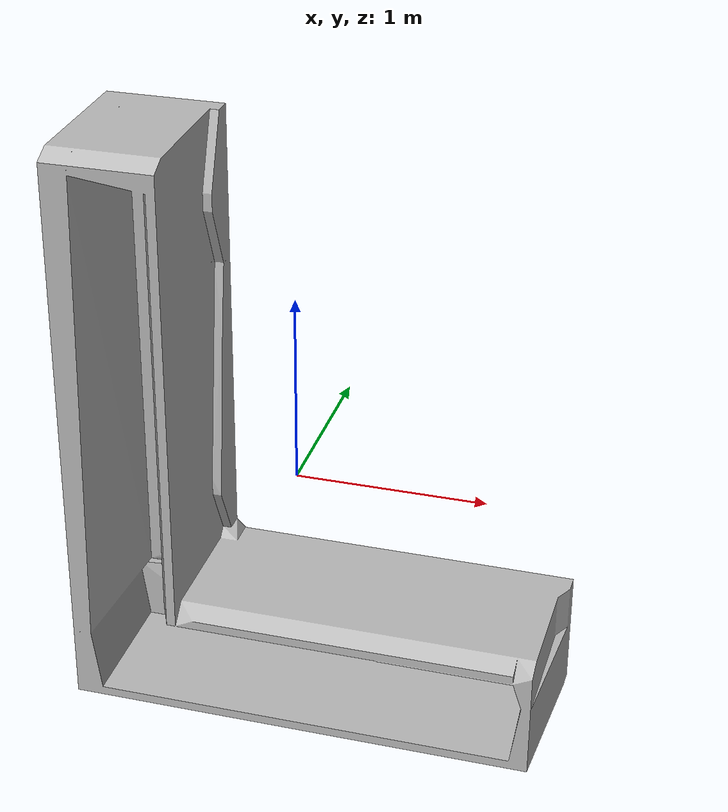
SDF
<?xml version="1.0" ?>
<sdf version="1.6">
  <model name="aws_robomaker_residential_KitchenCabinet_01">
    <link name="link">
      <inertial>
	<inertia>
          <ixx>1</ixx>
          <ixy>0</ixy>
          <ixz>0</ixz>
          <iyy>1</iyy>
          <iyz>0</iyz>
          <izz>1</izz>
        </inertia>
        <mass>1</mass>
      </inertial>
      <collision name="collision">
        <laser_retro>0</laser_retro>
        <max_contacts>10</max_contacts>
        <geometry>
          <mesh>
<uri>model://aws_robomaker_residential_KitchenCabinet_01/meshes/object_vhacd.obj</uri>
            <scale>1 1 1</scale>
          </mesh>
        </geometry>
      </collision>
      <visual name="visual">
	    <geometry>
          <mesh>
<uri>model://aws_robomaker_residential_KitchenCabinet_01/meshes/object.obj</uri>
          </mesh>
        </geometry>
      <meta> <layer> 1 </layer></meta>
</visual>
    </link>

    <static>1</static>
  </model>
</sdf>
